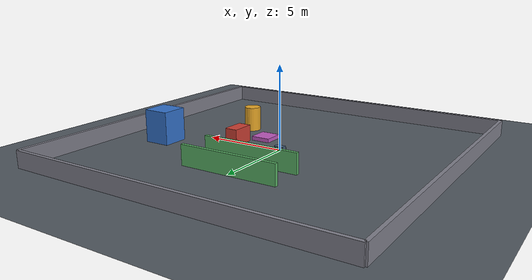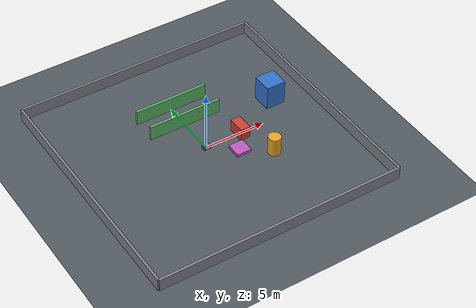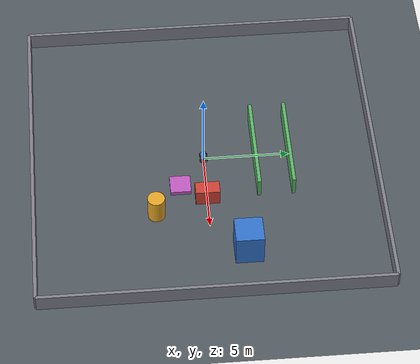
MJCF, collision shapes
<?xml version='1.0' encoding='utf-8'?>
<mujoco model="mickrobot">
  <compiler angle="radian" meshdir="/" autolimits="true" inertiafromgeom="false" />
  <option timestep="0.002" gravity="0 0 -9.80665" integrator="implicitfast" />
  <visual>
    <global azimuth="135" elevation="-25" />
  </visual>
  <asset>
    <material name="body_material" rgba="0.35 0.42 0.50 1" />
    <mesh name="body_mesh"  file="/home/mickrobot/dora_project/DORA_NAV/modules/simulation/mujoco_mickrobot/models/mesh/mickx4_body.STL" scale="0.001 0.001 0.001" />
    <mesh name="wheel_mesh" file="/home/mickrobot/dora_project/DORA_NAV/modules/simulation/mujoco_mickrobot/models/mesh/mickx4_wheel_8inches_2.STL" scale="0.001 0.001 0.001" />
    <mesh name="lidar_mesh" file="/home/mickrobot/dora_project/DORA_NAV/modules/simulation/mujoco_mickrobot/models/mesh/lidar.STL" scale="0.001 0.001 0.001" />
  </asset>
  <worldbody>
    <light name="sun" pos="0 0 8" dir="0 0 -1" directional="true" />
    <geom name="ground" type="plane" size="50 50 0.1" rgba="0.32 0.35 0.38 1" friction="1.0 0.02 0.002" />
    <geom name="boundary_north" type="box" pos="0 10 0.5" size="10 0.1 0.5" rgba="0.5 0.5 0.55 1" />
    <geom name="boundary_south" type="box" pos="0 -10 0.5" size="10 0.1 0.5" rgba="0.5 0.5 0.55 1" />
    <geom name="boundary_east" type="box" pos="10 0 0.5" size="0.1 10 0.5" rgba="0.5 0.5 0.55 1" />
    <geom name="boundary_west" type="box" pos="-10 0 0.5" size="0.1 10 0.5" rgba="0.5 0.5 0.55 1" />
    <geom name="box_near" type="box" pos="3 0 0.5" size="0.4 0.7 0.5" rgba="0.8 0.25 0.2 1" />
    <geom name="box_far" type="box" pos="7 2 1.0" size="0.8 0.8 1.0" rgba="0.2 0.45 0.8 1" />
    <geom name="cylinder" type="cylinder" pos="4 -3 0.75" size="0.5 0.75" rgba="0.9 0.65 0.15 1" />
    <geom name="corridor_left" type="box" pos="0 3 0.6" size="3 0.1 0.6" rgba="0.35 0.7 0.4 1" />
    <geom name="corridor_right" type="box" pos="0 5 0.6" size="3 0.1 0.6" rgba="0.35 0.7 0.4 1" />
    <geom name="low_obstacle" type="box" pos="2 -1.5 0.12" size="0.6 0.6 0.12" rgba="0.75 0.35 0.75 1" />
    <body name="base_footprint" pos="0 0 0" quat="1 0 0 0">
      <freejoint name="base_freejoint" />
      <body name="base_link" pos="0 0 0.1" quat="1 0 0 0">
        <inertial mass="25" diaginertia="0.212 1.03 1.16" pos="0 0 0.0" quat="1 0 0 0" />
        <geom name="base_collision" type="box" size="0.3 0.1667 0.125" friction="0.7 0.25 0.002" group="2" rgba="0.3 0.4 0.5 0.35" pos="0 0 0.05" quat="1 0 0 0" />
        <geom name="base_visual" type="mesh" mesh="body_mesh" pos="-0.3 -0.1667 0" quat="1.0 0 0 0.0" contype="0" conaffinity="0" group="1" rgba="0.55 0.58 0.62 1" />
        <body name="left_front_wheel" pos="0.2 0.2 0.00" quat="1 0 0 0">
          <inertial mass="1" diaginertia="0.0075 0.0075 0.01125" pos="0 0 0" quat="1 0 0 0" />
          <joint name="left_front_wheel_joint" type="hinge" axis="0 1 0" damping="0.2" armature="0.01" />
          <geom name="left_front_wheel_collision" type="cylinder" size="0.1 0.03" friction="1.2 0.02 0.002" group="2" rgba="0.12 0.12 0.12 0.5" pos="0 0 0" quat="0.707106781188 0.707106781185 0 0" />
          <geom name="left_front_wheel_visual" type="mesh" mesh="wheel_mesh" pos="-0.12 0.05 -0.12" quat="0.707109018043 0 0 -0.707104544323" contype="0" conaffinity="0" group="1" rgba="0.55 0.58 0.62 1" />
        </body>
        <body name="left_back_wheel" pos="-0.2 0.2 0.0" quat="1 0 0 0">
          <inertial mass="1" diaginertia="0.0075 0.0075 0.01125" pos="0 0 0" quat="1 0 0 0" />
          <joint name="left_back_wheel_joint" type="hinge" axis="0 1 0" damping="0.2" armature="0.01" />
          <geom name="left_back_wheel_collision" type="cylinder" size="0.1 0.03" friction="1.2 0.02 0.002" group="2" rgba="0.12 0.12 0.12 0.5" pos="0 0 0" quat="0.707106781188 0.707106781185 0 0" />
          <geom name="left_back_wheel_visual" type="mesh" mesh="wheel_mesh" pos="-0.12 0.05 -0.12" quat="0.707109018043 0 0 -0.707104544323" contype="0" conaffinity="0" group="1" rgba="0.55 0.58 0.62 1" />
        </body>
        <body name="right_front_wheel" pos="0.2 -0.2 0.0" quat="1 0 0 0">
          <inertial mass="1" diaginertia="0.0075 0.0075 0.01125" pos="0 0 0" quat="1 0 0 0" />
          <joint name="right_front_wheel_joint" type="hinge" axis="0 1 0" damping="0.2" armature="0.01" />
          <geom name="right_front_wheel_collision" type="cylinder" size="0.1 0.03" friction="1.2 0.02 0.002" group="2" rgba="0.12 0.12 0.12 0.5" pos="0 0 0" quat="0.707106781188 0.707106781185 0 0" />
          <geom name="right_front_wheel_visual" type="mesh" mesh="wheel_mesh" pos="0.12 -0.05 -0.12" quat="0.707109018043 0 0 0.707104544323" contype="0" conaffinity="0" group="1" rgba="0.55 0.58 0.62 1" />
        </body>
        <body name="right_back_wheel" pos="-0.2 -0.2 0.0" quat="1 0 0 0">
          <inertial mass="1" diaginertia="0.0075 0.0075 0.01125" pos="0 0 0" quat="1 0 0 0" />
          <joint name="right_back_wheel_joint" type="hinge" axis="0 1 0" damping="0.2" armature="0.01" />
          <geom name="right_back_wheel_collision" type="cylinder" size="0.1 0.03" friction="1.2 0.02 0.002" group="2" rgba="0.12 0.12 0.12 0.5" pos="0 0 0" quat="0.707106781188 0.707106781185 0 0" />
          <geom name="right_back_wheel_visual" type="mesh" mesh="wheel_mesh" pos="0.12 -0.05 -0.12" quat="0.707109018043 0 0 0.707104544323" contype="0" conaffinity="0" group="1" rgba="0.55 0.58 0.62 1" />
        </body>
        <body name="lidar_link" pos="0.25 0 0.25" quat="1 0 0 0">
          <inertial mass="0.2" diaginertia="0.00008333 0.00008333 0.00008333" pos="0 0 0" quat="1 0 0 0" />
          <geom name="lidar_visual" type="mesh" mesh="lidar_mesh" pos="0.025 -0.035 0" quat="0 0 0.707106781188 0.707106781185 " contype="0" conaffinity="0" group="1" rgba="0.55 0.58 0.62 1" />
          <site name="lidar_site" type="sphere" size="0.005" group="3" rgba="1 0 0 1" pos="0 0 0" quat="1 0 0 0" />
        </body>
        <body name="camera_link" pos="0.25 0 0.35" quat="1 0 0 0">
          <site name="camera_site" type="sphere" size="0.005" group="3" rgba="0 1 0 1" pos="0 0 0" quat="1 0 0 0" />
          <camera name="front_camera" mode="fixed" fovy="73.7397952917" pos="0 0 0" quat="0.500000000002 0.5 -0.499999999998 -0.5" />
        </body>
        <body name="imu_link" pos="0.25 0 0.21" quat="1 0 0 0">
          <site name="imu_site" type="sphere" size="0.004" group="3" rgba="0 0 1 1" pos="0 0 0" quat="1 0 0 0" />
        </body>
        <body name="gnss_link" pos="0.25 0 0.45" quat="1 0 0 0">
          <site name="gnss_site" type="sphere" size="0.004" group="3" rgba="1 1 0 1" pos="0 0 0" quat="1 0 0 0" />
        </body>
      </body>
    </body>
  </worldbody>
  <actuator>
    <velocity name="left_front_wheel_actuator" joint="left_front_wheel_joint" kv="20" forcerange="-100 100" />
    <velocity name="left_back_wheel_actuator" joint="left_back_wheel_joint" kv="20" forcerange="-100 100" />
    <velocity name="right_front_wheel_actuator" joint="right_front_wheel_joint" kv="20" forcerange="-100 100" />
    <velocity name="right_back_wheel_actuator" joint="right_back_wheel_joint" kv="20" forcerange="-100 100" />
  </actuator>
  <sensor>
    <framequat name="imu_orientation" objtype="site" objname="imu_site" />
    <gyro name="imu_gyro" site="imu_site" />
    <accelerometer name="imu_accelerometer" site="imu_site" />
    <framepos name="gnss_position" objtype="site" objname="gnss_site" />
    <framelinvel name="gnss_velocity" objtype="site" objname="gnss_site" />
  </sensor>
</mujoco>
